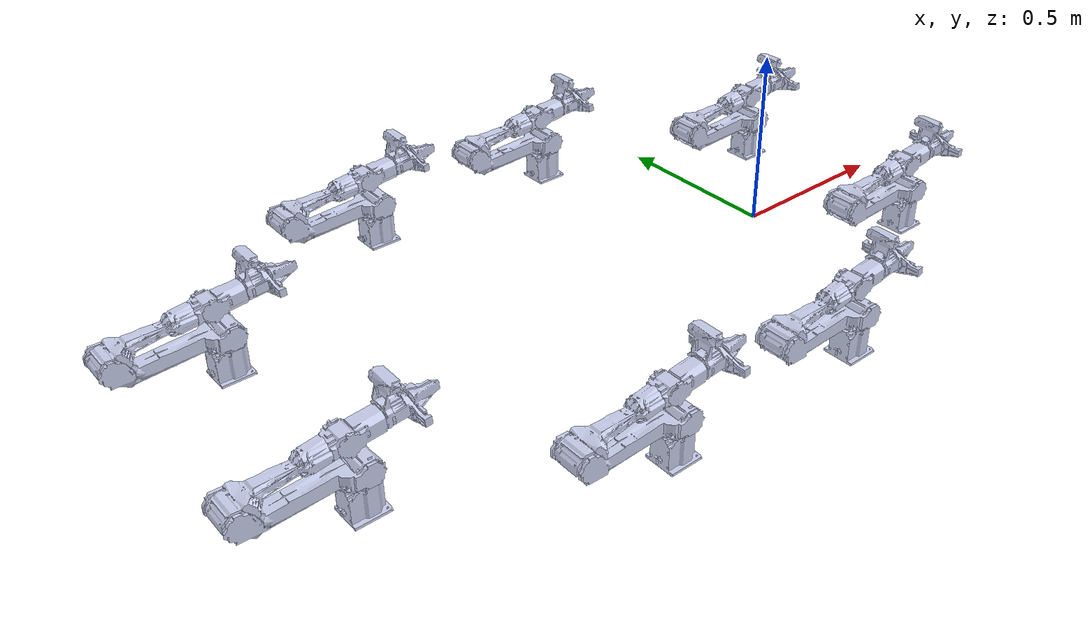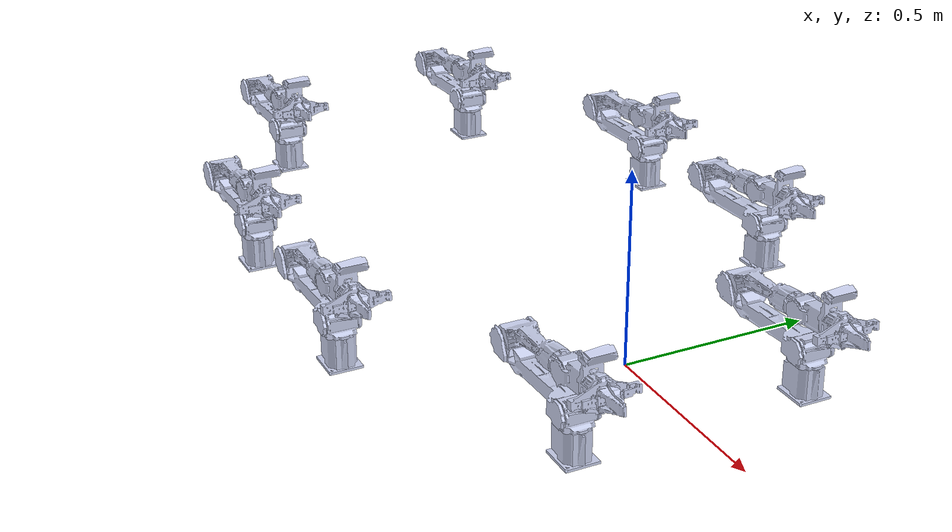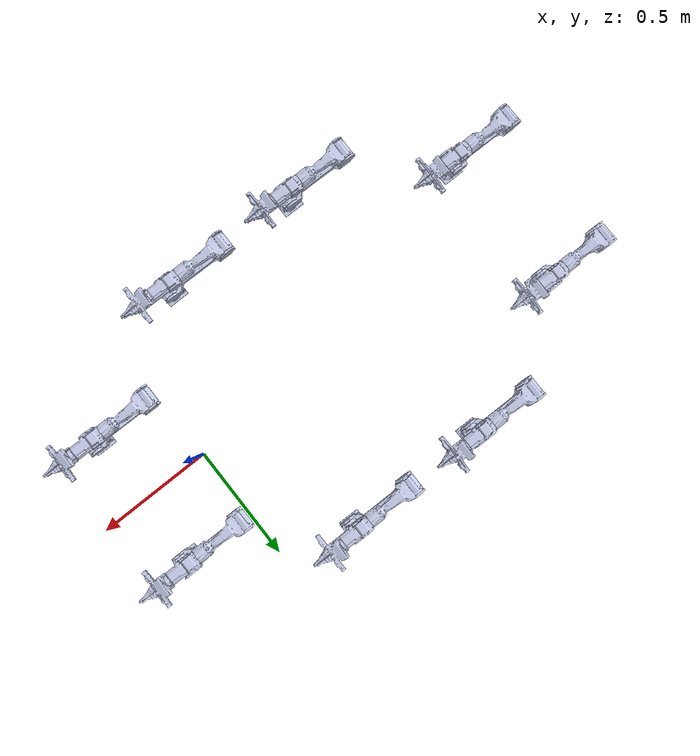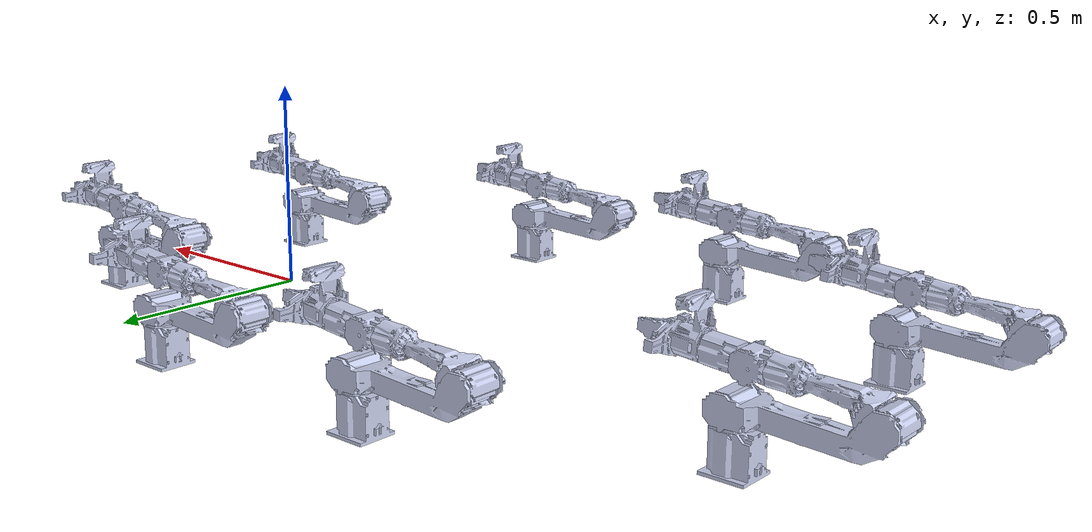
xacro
<?xml version="1.0"?>
<robot xmlns:xacro="http://www.ros.org/wiki/xacro" name="piper">

<xacro:include filename="$(find piper_description)/urdf/piper_description_with_camera_front_left.xacro"/>
<xacro:include filename="$(find piper_description)/urdf/piper_description_with_camera_front_right.xacro"/>

    <xacro:front_left namespace="front_1">
    </xacro:front_left>

    <xacro:front_left namespace="front_8">
    </xacro:front_left>

    <xacro:front_left namespace="front_7">
    </xacro:front_left>

    <xacro:front_left namespace="front_6">
    </xacro:front_left>

    <xacro:front_right namespace="front_2">
    </xacro:front_right>

    <xacro:front_right namespace="front_3">
    </xacro:front_right>

    <xacro:front_right namespace="front_4">
    </xacro:front_right>

    <xacro:front_right namespace="front_5">
    </xacro:front_right>

    <link name="arm_base_link"/>

    <joint name="front_1_arm" type="fixed">
        <origin xyz="0.3 0.30 0.0" rpy="0.0 0.0 0.0"/>
        <parent link="arm_base_link"/>
        <child link="front_1/arm_base"/>
        <axis xyz="0.0 0.0 0.0"/>
        <limit lower="0.0" upper="0.0" effort="0.0" velocity="0.0"/>
    </joint>

    <joint name="front_8_arm" type="fixed">
        <origin xyz="-0.3 0.6 0.0" rpy="0.0 0.0 0.0"/>
        <parent link="arm_base_link"/>
        <child link="front_8/arm_base"/>
        <axis xyz="0.0 0.0 0.0"/>
        <limit lower="0.0" upper="0.0" effort="0.0" velocity="0.0"/>
    </joint>

    <joint name="front_7_arm" type="fixed">
        <origin xyz="-0.9 0.6 0.0" rpy="0.0 0.0 0.0"/>
        <parent link="arm_base_link"/>
        <child link="front_7/arm_base"/>
        <axis xyz="0.0 0.0 0.0"/>
        <limit lower="0.0" upper="0.0" effort="0.0" velocity="0.0"/>
    </joint>

    <joint name="front_6_arm" type="fixed">
        <origin xyz="-1.5 0.3 0.0" rpy="0.0 0.0 0.0"/>
        <parent link="arm_base_link"/>
        <child link="front_6/arm_base"/>
        <axis xyz="0.0 0.0 0.0"/>
        <limit lower="0.0" upper="0.0" effort="0.0" velocity="0.0"/>
    </joint>

    <joint name="front_2_arm" type="fixed">
        <origin xyz="0.3 -0.30 0.0" rpy="0.0 0.0 0.0"/>
        <parent link="arm_base_link"/>
        <child link="front_2/arm_base"/>
        <axis xyz="0.0 0.0 0.0"/>
        <limit lower="0.0" upper="0.0" effort="0.0" velocity="0.0"/>
    </joint>

    <joint name="front_3_arm" type="fixed">
        <origin xyz="-0.3 -0.60 0.0" rpy="0.0 0.0 0.0"/>
        <parent link="arm_base_link"/>
        <child link="front_3/arm_base"/>
        <axis xyz="0.0 0.0 0.0"/>
        <limit lower="0.0" upper="0.0" effort="0.0" velocity="0.0"/>
    </joint>

    <joint name="front_4_arm" type="fixed">
        <origin xyz="-0.9 -0.60 0.0" rpy="0.0 0.0 0.0"/>
        <parent link="arm_base_link"/>
        <child link="front_4/arm_base"/>
        <axis xyz="0.0 0.0 0.0"/>
        <limit lower="0.0" upper="0.0" effort="0.0" velocity="0.0"/>
    </joint>

    <joint name="front_5_arm" type="fixed">
        <origin xyz="-1.5 -0.30 0.0" rpy="0.0 0.0 0.0"/>
        <parent link="arm_base_link"/>
        <child link="front_5/arm_base"/>
        <axis xyz="0.0 0.0 0.0"/>
        <limit lower="0.0" upper="0.0" effort="0.0" velocity="0.0"/>
    </joint>

</robot>

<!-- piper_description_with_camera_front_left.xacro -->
<robot xmlns:xacro="http://www.ros.org/wiki/xacro" name="piper_camera">
    <xacro:macro name="front_left" params="namespace">

    <link name="${namespace}/arm_base">
        <inertial>
        <origin
            xyz="-0.00979274765955341 1.82905827587138E-06 0.0410100126360189"
            rpy="0 0 0" />
        <mass value="0.162548567403693" />
        <inertia
            ixx="0.000226596924525071"
            ixy="-7.33972270153965E-08"
            ixz="2.13249977802622E-06"
            iyy="0.000269444772561524"
            iyz="8.15169009611054E-09"
            izz="0.000222318258878636" />
        </inertial>
        <visual>
        <origin xyz="0 0 0" rpy="0 0 0" />
        <geometry>
            <mesh filename="package://piper_description/meshes/dae/base_link.dae" />
        </geometry>
        <material name="">
            <color rgba="0.792156862745098 0.819607843137255 0.933333333333333 1" />
        </material>
        </visual>
        <collision>
            <origin xyz="0 0 0" rpy="0 0 0" />
            <geometry>
                <mesh filename="package://piper_description/meshes/base_link.STL" />
            </geometry>
        </collision>
    </link>

    <link name="${namespace}/link1">
        <inertial>
        <origin
            xyz="0.00131676031927024 0.000310288842008612 -0.00922874512303437"
            rpy="0 0 0" />
        <mass value="0.0978679932242825" />
        <inertia
            ixx="7.76684558296782E-05"
            ixy="1.09084650459924E-07"
            ixz="-1.9748053243241E-06"
            iyy="9.24967780161547E-05"
            iyz="9.91284646834582E-07"
            izz="8.24589062407807E-05" />
        </inertial>
        <visual>
        <origin xyz="0 0 0" rpy="0 0 0" />
        <geometry>
            <mesh filename="package://piper_description/meshes/dae/link1.dae" />
        </geometry>
        <material name="">
            <color rgba="0.792156862745098 0.819607843137255 0.933333333333333 1" />
        </material>
        </visual>
        <collision>
            <origin xyz="0 0 0" rpy="0 0 1.5708" />
            <geometry>
                <mesh filename="package://piper_description/meshes/link1.STL" />
            </geometry>
        </collision>
    </link>
    <joint name="${namespace}/joint1" type="revolute">
        <origin xyz="0 0 0.123" rpy="0 0 -1.5708" />
        <parent link="${namespace}/arm_base" />
        <child link="${namespace}/link1" />
        <axis xyz="0 0 1" />
        <limit lower="-2.618" upper="2.618" effort="100" velocity="3" />
    </joint>

    <link name="${namespace}/link2">
        <inertial>
        <origin
            xyz="0.148793602378802 -0.00242026983944119 0.00175154638467948"
            rpy="0 0 0" />
        <mass value="0.290888938633388" />
        <inertia
            ixx="0.000148959640166183"
            ixy="-7.37750384371657E-05"
            ixz="-9.68688405196236E-07"
            iyy="0.00172800946632652"
            iyz="-1.09692225564224E-06"
            izz="0.0017754628344594" />
        </inertial>
        <visual>
        <origin xyz="0 0 0" rpy="0 0 0" />
        <geometry>
            <mesh filename="package://piper_description/meshes/dae/link2.dae" />
        </geometry>
        <material name="">
            <color rgba="0.792156862745098 0.819607843137255 0.933333333333333 1" />
        </material>
        </visual>
        <collision>
            <origin xyz="0 0 0" rpy="0 0 0.1" />
            <geometry>
                <mesh filename="package://piper_description/meshes/link2.STL" />
            </geometry>
        </collision>
    </link>
    <joint name="${namespace}/joint2" type="revolute">
        <origin xyz="0 0 0" rpy="1.5708 -0.034907 -1.5708" />
        <parent link="${namespace}/link1" />
        <child link="${namespace}/link2" />
        <axis xyz="0 0 1" />
        <limit lower="0" upper="3.14" effort="100" velocity="3" />
    </joint>

    <link name="${namespace}/link3">
        <inertial>
        <origin
            xyz="-0.0996835215213704 0.0349477226691318 0.000508025815507312"
            rpy="0 0 0" />
        <mass value="0.290847697793211" />
        <inertia
            ixx="0.000107879011637167"
            ixy="2.92669521203626E-05"
            ixz="6.825922326238E-07"
            iyy="0.000214751671792086"
            iyz="-7.78469047878196E-07"
            izz="0.000241923439340319" />
        </inertial>
        <visual>
        <origin xyz="0 0 0" rpy="0 0 0" />
        <geometry>
            <mesh filename="package://piper_description/meshes/dae/link3.dae" />
        </geometry>
        <material name="">
            <color rgba="0.792156862745098 0.819607843137255 0.933333333333333 1" />
        </material>
        </visual>
        <collision>
        <origin xyz="0 0 0" rpy="0 0 -1.75" />
        <geometry>
            <mesh filename="package://piper_description/meshes/link3.STL" />
        </geometry>
        </collision>
    </link>
    <joint name="${namespace}/joint3" type="revolute">
        <origin xyz="0.28358 0.028726 0" rpy="0 0 0.06604341" />
        <parent link="${namespace}/link2" />
        <child link="${namespace}/link3" />
        <axis xyz="0 0 1" />
        <limit lower="-2.697" upper="0" effort="100" velocity="3" />
    </joint>

    <link name="${namespace}/link4">
        <inertial>
        <origin
            xyz="0.000276464622387979 -0.00102803669324875 -0.00472830700561663"
            rpy="0 0 0" />
        <mass value="0.127087348341362" />
        <inertia
            ixx="3.82011730423416E-05"
            ixy="-4.92358350897513E-08"
            ixz="4.89589432973119E-08"
            iyy="4.87048555222578E-05"
            iyz="6.70802942500512E-08"
            izz="4.10592077565559E-05" />
        </inertial>
        <visual>
        <origin xyz="0 0 0" rpy="0 0 0" />
        <geometry>
            <mesh filename="package://piper_description/meshes/dae/link4.dae" />
        </geometry>
        <material name="">
            <color rgba="0.792156862745098 0.819607843137255 0.933333333333333 1" />
        </material>
        </visual>
        <collision>
        <origin xyz="0 0 0" rpy="0 0 0" />
        <geometry>
            <mesh filename="package://piper_description/meshes/link4.STL" />
        </geometry>
        </collision>
    </link>
    <joint name="${namespace}/joint4" type="revolute">
        <origin xyz="-0.24221 0.068514 0" rpy="-1.5708 0 1.3826" />
        <parent link="${namespace}/link3" />
        <child link="${namespace}/link4" />
        <axis xyz="0 0 1" />
        <limit lower="-1.832" upper="1.832" effort="100" velocity="3" />
    </joint>

    <link name="${namespace}/link5">
        <inertial>
        <origin
            xyz="8.82262433516967E-05 0.0566829014808256 -0.00196119720482461"
            rpy="0 0 0" />
        <mass value="0.144711242639457" />
        <inertia
            ixx="4.39644313662493E-05"
            ixy="-3.59259686444846E-08"
            ixz="-1.89747741386183E-08"
            iyy="5.63173920951307E-05"
            iyz="-2.1540716689785E-07"
            izz="4.88713664675268E-05" />
        </inertial>
        <visual>
        <origin xyz="0 0 0" rpy="0 0 0" />
        <geometry>
            <mesh filename="package://piper_description/meshes/dae/link5.dae" />
        </geometry>
        <material name="">
            <color rgba="0.792156862745098 0.819607843137255 0.933333333333333 1" />
        </material>
        </visual>
        <collision>
        <origin xyz="0 0 0" rpy="0 0 -3.14" />
        <geometry>
            <mesh filename="package://piper_description/meshes/link5.STL" />
        </geometry>
        </collision>
    </link>
    <joint name="${namespace}/joint5" type="revolute">
        <origin xyz="0 0 0" rpy="1.5708 0 0" />
        <parent link="${namespace}/link4" />
        <child link="${namespace}/link5" />
        <axis xyz="0 0 1" />
        <limit lower="-1.22" upper="1.22" effort="100" velocity="3" />
    </joint>

    <link name="${namespace}/link6">
        <inertial>
        <origin
            xyz="0.00103120214523473 0.0121761387587524 0.0315480874960164"
            rpy="0 0 0" />
        <mass value="0.195187143240719" />
        <inertia
            ixx="6.43790256535539E-05"
            ixy="-1.2366166157046E-06"
            ixz="1.97664606328472E-07"
            iyy="0.000126146396374301"
            iyz="2.41157078516408E-06"
            izz="0.000154087076816444" />
        </inertial>
        <visual>
        <origin xyz="-0.002 -0.008 0" rpy="-1.57 0 0" />
        <geometry>
            <mesh filename="package://piper_description/meshes/dae/camera_v3.dae"/>
        </geometry>
        <material name="">
            <color rgba="0.792156862745098 0.819607843137255 0.933333333333333 1" />
        </material>
        </visual>
        <collision>
        <origin xyz="-0.002 -0.008 0" rpy="-1.57 0 0" />
        <geometry>
            <mesh filename="package://piper_description/meshes/dae/camera_v3.dae"/>
        </geometry>
        </collision>
    </link>
    <joint name="${namespace}/joint6" type="revolute">
        <origin xyz="0 0.091 0.0014165" rpy="-1.5708 -1.5708 0" />
        <parent link="${namespace}/link5" />
        <child link="${namespace}/link6" />
        <axis xyz="0 0 1" />
        <limit lower="-3.14" upper="3.14" effort="100" velocity="3" />
    </joint>

    <link name="${namespace}/link7">
        <inertial>
        <origin
            xyz="-0.000277778383727112 -0.0467673043650824 -0.00921029491873201"
            rpy="0 0 0" />
        <mass value="0.02648229234527" />
        <inertia
            ixx="9.99787479924589E-06"
            ixy="-1.57548495096104E-07"
            ixz="-2.71342775003487E-08"
            iyy="6.1795212293655E-06"
            iyz="-1.58939803580081E-06"
            izz="1.42102717246564E-05" />
        </inertial>
        <visual>
        <origin xyz="0 0 0" rpy="0 0 0" />
        <geometry>
            <mesh filename="package://piper_description/meshes/dae/link7.dae" />
        </geometry>
        <material name="">
            <color rgba="0.792156862745098 0.819607843137255 0.933333333333333 1" />
        </material>
        </visual>
        <collision>
        <origin xyz="-0.001 0 0.0003" rpy="0 3.14 0" />
        <geometry>
            <mesh filename="package://piper_description/meshes/link7.STL" />
        </geometry>
        </collision>
    </link>
    <joint name="${namespace}/joint7" type="fixed">
        <origin xyz="0 0 0.13503" rpy="1.5708 0 1.5708" />
        <parent link="${namespace}/link6" />
        <child link="${namespace}/link7" />
        <axis xyz="0 0 -1" />
        <limit lower="0" upper="0.05" effort="100" velocity="1" />
    </joint>

    <link name="${namespace}/link8">
        <inertial>
        <origin
            xyz="0.000277816920932317 0.0467673824063769 -0.00921030054508036"
            rpy="0 0 0" />
        <mass value="0.0264822021416248" />
        <inertia
            ixx="9.99779119357223E-06"
            ixy="-1.57542283433504E-07"
            ixz="2.71367446701359E-08"
            iyy="6.17952441557932E-06"
            iyz="1.58939319453383E-06"
            izz="1.4210192754512E-05" />
        </inertial>
        <visual>
        <origin xyz="0 0 0" rpy="0 0 0" />
        <geometry>
            <mesh filename="package://piper_description/meshes/dae/link8.dae" />
        </geometry>
        <material name="">
            <color rgba="0.792156862745098 0.819607843137255 0.933333333333333 1" />
        </material>
        </visual>
        <collision>
        <origin xyz="-0.001 0 0.0003" rpy="3.14 0 0" />
        <geometry>
            <mesh filename="package://piper_description/meshes/link8.STL" />
        </geometry>
        </collision>
    </link>
    <joint name="${namespace}/joint8" type="fixed">
        <origin xyz="0 0 0.13503" rpy="-1.5708 0 1.5708" />
        <parent link="${namespace}/link6" />
        <child link="${namespace}/link8" />
        <axis xyz="0 0 1" />
        <limit lower="-0.05" upper="0" effort="100" velocity="1" />
    </joint>

</xacro:macro>

</robot>

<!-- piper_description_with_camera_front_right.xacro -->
<robot xmlns:xacro="http://www.ros.org/wiki/xacro" name="piper_camera">
    <xacro:macro name="front_right" params="namespace">

    <link name="${namespace}/arm_base">
        <inertial>
        <origin
            xyz="-0.00979274765955341 1.82905827587138E-06 0.0410100126360189"
            rpy="0 0 0" />
        <mass value="0.162548567403693" />
        <inertia
            ixx="0.000226596924525071"
            ixy="-7.33972270153965E-08"
            ixz="2.13249977802622E-06"
            iyy="0.000269444772561524"
            iyz="8.15169009611054E-09"
            izz="0.000222318258878636" />
        </inertial>
        <visual>
        <origin xyz="0 0 0" rpy="0 0 0" />
        <geometry>
            <mesh filename="package://piper_description/meshes/dae/base_link.dae" />
        </geometry>
        <material name="">
            <color rgba="0.792156862745098 0.819607843137255 0.933333333333333 1" />
        </material>
        </visual>
        <collision>
            <origin xyz="0 0 0" rpy="0 0 0" />
            <geometry>
                <mesh filename="package://piper_description/meshes/base_link.STL" />
            </geometry>
        </collision>
    </link>

    <link name="${namespace}/link1">
        <inertial>
        <origin
            xyz="0.00131676031927024 0.000310288842008612 -0.00922874512303437"
            rpy="0 0 0" />
        <mass value="0.0978679932242825" />
        <inertia
            ixx="7.76684558296782E-05"
            ixy="1.09084650459924E-07"
            ixz="-1.9748053243241E-06"
            iyy="9.24967780161547E-05"
            iyz="9.91284646834582E-07"
            izz="8.24589062407807E-05" />
        </inertial>
        <visual>
        <origin xyz="0 0 0" rpy="0 0 0" />
        <geometry>
            <mesh filename="package://piper_description/meshes/dae/link1.dae" />
        </geometry>
        <material name="">
            <color rgba="0.792156862745098 0.819607843137255 0.933333333333333 1" />
        </material>
        </visual>
        <collision>
            <origin xyz="0 0 0" rpy="0 0 1.5708" />
            <geometry>
                <mesh filename="package://piper_description/meshes/link1.STL" />
            </geometry>
        </collision>
    </link>
    <joint name="${namespace}/joint1" type="revolute">
        <origin xyz="0 0 0.123" rpy="0 0 -1.5708" />
        <parent link="${namespace}/arm_base" />
        <child link="${namespace}/link1" />
        <axis xyz="0 0 1" />
        <limit lower="-2.618" upper="2.618" effort="100" velocity="3" />
    </joint>

    <link name="${namespace}/link2">
        <inertial>
        <origin
            xyz="0.148793602378802 -0.00242026983944119 0.00175154638467948"
            rpy="0 0 0" />
        <mass value="0.290888938633388" />
        <inertia
            ixx="0.000148959640166183"
            ixy="-7.37750384371657E-05"
            ixz="-9.68688405196236E-07"
            iyy="0.00172800946632652"
            iyz="-1.09692225564224E-06"
            izz="0.0017754628344594" />
        </inertial>
        <visual>
        <origin xyz="0 0 0" rpy="0 0 0" />
        <geometry>
            <mesh filename="package://piper_description/meshes/dae/link2.dae" />
        </geometry>
        <material name="">
            <color rgba="0.792156862745098 0.819607843137255 0.933333333333333 1" />
        </material>
        </visual>
        <collision>
            <origin xyz="0 0 0" rpy="0 0 0.1" />
            <geometry>
                <mesh filename="package://piper_description/meshes/link2.STL" />
            </geometry>
        </collision>
    </link>
    <joint name="${namespace}/joint2" type="revolute">
        <origin xyz="0 0 0" rpy="1.5708 -0.034907 -1.5708" />
        <parent link="${namespace}/link1" />
        <child link="${namespace}/link2" />
        <axis xyz="0 0 1" />
        <limit lower="0" upper="3.14" effort="100" velocity="3" />
    </joint>

    <link name="${namespace}/link3">
        <inertial>
        <origin
            xyz="-0.0996835215213704 0.0349477226691318 0.000508025815507312"
            rpy="0 0 0" />
        <mass value="0.290847697793211" />
        <inertia
            ixx="0.000107879011637167"
            ixy="2.92669521203626E-05"
            ixz="6.825922326238E-07"
            iyy="0.000214751671792086"
            iyz="-7.78469047878196E-07"
            izz="0.000241923439340319" />
        </inertial>
        <visual>
        <origin xyz="0 0 0" rpy="0 0 0" />
        <geometry>
            <mesh filename="package://piper_description/meshes/dae/link3.dae" />
        </geometry>
        <material name="">
            <color rgba="0.792156862745098 0.819607843137255 0.933333333333333 1" />
        </material>
        </visual>
        <collision>
        <origin xyz="0 0 0" rpy="0 0 -1.75" />
        <geometry>
            <mesh filename="package://piper_description/meshes/link3.STL" />
        </geometry>
        </collision>
    </link>
    <joint name="${namespace}/joint3" type="revolute">
        <origin xyz="0.28358 0.028726 0" rpy="0 0 0.06604341" />
        <parent link="${namespace}/link2" />
        <child link="${namespace}/link3" />
        <axis xyz="0 0 1" />
        <limit lower="-2.697" upper="0" effort="100" velocity="3" />
    </joint>

    <link name="${namespace}/link4">
        <inertial>
        <origin
            xyz="0.000276464622387979 -0.00102803669324875 -0.00472830700561663"
            rpy="0 0 0" />
        <mass value="0.127087348341362" />
        <inertia
            ixx="3.82011730423416E-05"
            ixy="-4.92358350897513E-08"
            ixz="4.89589432973119E-08"
            iyy="4.87048555222578E-05"
            iyz="6.70802942500512E-08"
            izz="4.10592077565559E-05" />
        </inertial>
        <visual>
        <origin xyz="0 0 0" rpy="0 0 0" />
        <geometry>
            <mesh filename="package://piper_description/meshes/dae/link4.dae" />
        </geometry>
        <material name="">
            <color rgba="0.792156862745098 0.819607843137255 0.933333333333333 1" />
        </material>
        </visual>
        <collision>
        <origin xyz="0 0 0" rpy="0 0 0" />
        <geometry>
            <mesh filename="package://piper_description/meshes/link4.STL" />
        </geometry>
        </collision>
    </link>
    <joint name="${namespace}/joint4" type="revolute">
        <origin xyz="-0.24221 0.068514 0" rpy="-1.5708 0 1.3826" />
        <parent link="${namespace}/link3" />
        <child link="${namespace}/link4" />
        <axis xyz="0 0 1" />
        <limit lower="-1.832" upper="1.832" effort="100" velocity="3" />
    </joint>

    <link name="${namespace}/link5">
        <inertial>
        <origin
            xyz="8.82262433516967E-05 0.0566829014808256 -0.00196119720482461"
            rpy="0 0 0" />
        <mass value="0.144711242639457" />
        <inertia
            ixx="4.39644313662493E-05"
            ixy="-3.59259686444846E-08"
            ixz="-1.89747741386183E-08"
            iyy="5.63173920951307E-05"
            iyz="-2.1540716689785E-07"
            izz="4.88713664675268E-05" />
        </inertial>
        <visual>
        <origin xyz="0 0 0" rpy="0 0 0" />
        <geometry>
            <mesh filename="package://piper_description/meshes/dae/link5.dae" />
        </geometry>
        <material name="">
            <color rgba="0.792156862745098 0.819607843137255 0.933333333333333 1" />
        </material>
        </visual>
        <collision>
        <origin xyz="0 0 0" rpy="0 0 -3.14" />
        <geometry>
            <mesh filename="package://piper_description/meshes/link5.STL" />
        </geometry>
        </collision>
    </link>
    <joint name="${namespace}/joint5" type="revolute">
        <origin xyz="0 0 0" rpy="1.5708 0 0" />
        <parent link="${namespace}/link4" />
        <child link="${namespace}/link5" />
        <axis xyz="0 0 1" />
        <limit lower="-1.22" upper="1.22" effort="100" velocity="3" />
    </joint>

    <link name="${namespace}/link6">
        <inertial>
        <origin
            xyz="0.00103120214523473 0.0121761387587524 0.0315480874960164"
            rpy="0 0 0" />
        <mass value="0.195187143240719" />
        <inertia
            ixx="6.43790256535539E-05"
            ixy="-1.2366166157046E-06"
            ixz="1.97664606328472E-07"
            iyy="0.000126146396374301"
            iyz="2.41157078516408E-06"
            izz="0.000154087076816444" />
        </inertial>
        <visual>
        <origin xyz="-0.002 -0.008 0" rpy="-1.57 0 0" />
        <geometry>
            <mesh filename="package://piper_description/meshes/dae/camera_v3.dae"/>
        </geometry>
        <material name="">
            <color rgba="0.792156862745098 0.819607843137255 0.933333333333333 1" />
        </material>
        </visual>
        <collision>
        <origin xyz="-0.002 -0.008 0" rpy="-1.57 0 0" />
        <geometry>
            <mesh filename="package://piper_description/meshes/dae/camera_v3.dae"/>
        </geometry>
        </collision>
    </link>
    <joint name="${namespace}/joint6" type="revolute">
        <origin xyz="0 0.091 0.0014165" rpy="-1.5708 -1.5708 0" />
        <parent link="${namespace}/link5" />
        <child link="${namespace}/link6" />
        <axis xyz="0 0 1" />
        <limit lower="-3.14" upper="3.14" effort="100" velocity="3" />
    </joint>

    <link name="${namespace}/link7">
        <inertial>
        <origin
            xyz="-0.000277778383727112 -0.0467673043650824 -0.00921029491873201"
            rpy="0 0 0" />
        <mass value="0.02648229234527" />
        <inertia
            ixx="9.99787479924589E-06"
            ixy="-1.57548495096104E-07"
            ixz="-2.71342775003487E-08"
            iyy="6.1795212293655E-06"
            iyz="-1.58939803580081E-06"
            izz="1.42102717246564E-05" />
        </inertial>
        <visual>
        <origin xyz="0 0 0" rpy="0 0 0" />
        <geometry>
            <mesh filename="package://piper_description/meshes/dae/link7.dae" />
        </geometry>
        <material name="">
            <color rgba="0.792156862745098 0.819607843137255 0.933333333333333 1" />
        </material>
        </visual>
        <collision>
        <origin xyz="-0.001 0 0.0003" rpy="0 3.14 0" />
        <geometry>
            <mesh filename="package://piper_description/meshes/link7.STL" />
        </geometry>
        </collision>
    </link>
    <joint name="${namespace}/joint7" type="fixed">
        <origin xyz="0 0 0.13503" rpy="1.5708 0 1.5708" />
        <parent link="${namespace}/link6" />
        <child link="${namespace}/link7" />
        <axis xyz="0 0 -1" />
        <limit lower="0" upper="0.05" effort="100" velocity="1" />
    </joint>

    <link name="${namespace}/link8">
        <inertial>
        <origin
            xyz="0.000277816920932317 0.0467673824063769 -0.00921030054508036"
            rpy="0 0 0" />
        <mass value="0.0264822021416248" />
        <inertia
            ixx="9.99779119357223E-06"
            ixy="-1.57542283433504E-07"
            ixz="2.71367446701359E-08"
            iyy="6.17952441557932E-06"
            iyz="1.58939319453383E-06"
            izz="1.4210192754512E-05" />
        </inertial>
        <visual>
        <origin xyz="0 0 0" rpy="0 0 0" />
        <geometry>
            <mesh filename="package://piper_description/meshes/dae/link8.dae" />
        </geometry>
        <material name="">
            <color rgba="0.792156862745098 0.819607843137255 0.933333333333333 1" />
        </material>
        </visual>
        <collision>
        <origin xyz="-0.001 0 0.0003" rpy="3.14 0 0" />
        <geometry>
            <mesh filename="package://piper_description/meshes/link8.STL" />
        </geometry>
        </collision>
    </link>
    <joint name="${namespace}/joint8" type="fixed">
        <origin xyz="0 0 0.13503" rpy="-1.5708 0 1.5708" />
        <parent link="${namespace}/link6" />
        <child link="${namespace}/link8" />
        <axis xyz="0 0 1" />
        <limit lower="-0.05" upper="0" effort="100" velocity="1" />
    </joint>

</xacro:macro>

</robot>
